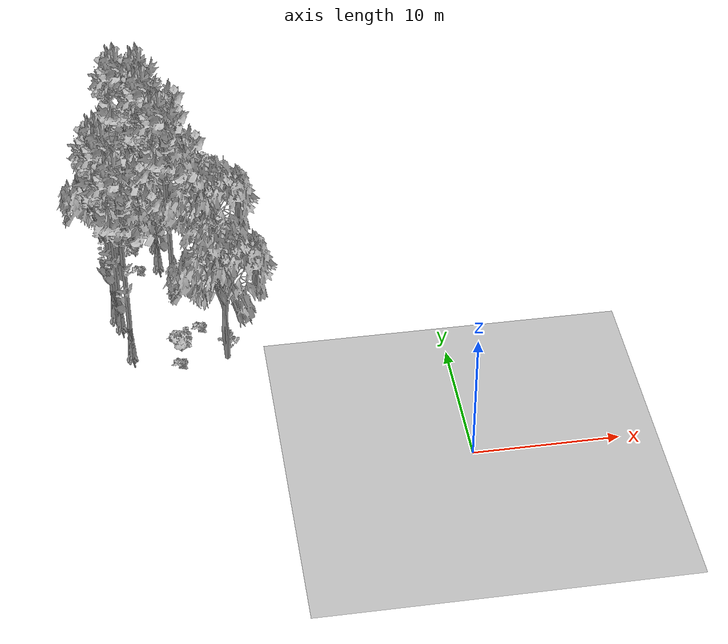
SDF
<sdf version="1.7">
 <world name="default">
  <model name="ground_plane">
   <static>1</static>
   <link name="link">
    <collision name="collision">
     <pose>-50 0 0 0 -0 0</pose>
     <geometry><plane><normal>0 0 1</normal><size>80 80</size></plane></geometry>
     <surface><contact><ode><min_depth>0.01</min_depth><max_vel>0</max_vel></ode></contact></surface>
    </collision>
    <visual name="grass">
     <cast_shadows>0</cast_shadows>
     <geometry>
      <mesh>
       <scale>0.46714285714285714 0.46714285714285714 0.1</scale>
       <uri>file://grass_plane/meshes/grass_plane.dae</uri>
      </mesh>
     </geometry>
    </visual>
   </link>
  </model>
  <model name="Tree 31">
   <static>1</static>
   <pose>-22.758737027457613 17.251786280701786 0 1.57079 -0 0</pose>
   <link name="link">
    <collision name="collision">
     <geometry><mesh><scale>3.5 5 3.5</scale><uri>model://tree_9/meshes/tree_9.obj</uri></mesh></geometry>
    </collision>
    <visual name="visual">
     <geometry><mesh><scale>3.5 5 3.5</scale><uri>model://tree_9/meshes/tree_9.obj</uri></mesh></geometry>
    </visual>
   </link>
  </model>
  <model name="Tree 125">
   <static>1</static>
   <pose>-19.71564428467924 25.69863543960244 0 1.57079 -0 0</pose>
   <link name="link">
    <collision name="collision">
     <geometry><mesh><scale>3.5 5 3.5</scale><uri>model://tree_2/meshes/tree_2.obj</uri></mesh></geometry>
    </collision>
    <visual name="visual">
     <geometry><mesh><scale>3.5 5 3.5</scale><uri>model://tree_2/meshes/tree_2.obj</uri></mesh></geometry>
    </visual>
   </link>
  </model>
  <model name="Tree 144">
   <static>1</static>
   <pose>-20.960469105989926 25.221714345924255 0 1.57079 -0 0</pose>
   <link name="link">
    <collision name="collision">
     <geometry><mesh><scale>3.5 5 3.5</scale><uri>model://tree_9/meshes/tree_9.obj</uri></mesh></geometry>
    </collision>
    <visual name="visual">
     <geometry><mesh><scale>3.5 5 3.5</scale><uri>model://tree_9/meshes/tree_9.obj</uri></mesh></geometry>
    </visual>
   </link>
  </model>
  <model name="Tree 248">
   <static>1</static>
   <pose>-15.319965873327412 11.839614374989779 0 1.57079 -0 0</pose>
   <link name="link">
    <collision name="collision">
     <geometry><mesh><scale>3.5 5 3.5</scale><uri>model://tree_2/meshes/tree_2.obj</uri></mesh></geometry>
    </collision>
    <visual name="visual">
     <geometry><mesh><scale>3.5 5 3.5</scale><uri>model://tree_2/meshes/tree_2.obj</uri></mesh></geometry>
    </visual>
   </link>
  </model>
  <model name="Tree 289">
   <static>1</static>
   <pose>-21.834169093438742 13.017754842265099 0 1.57079 -0 0</pose>
   <link name="link">
    <collision name="collision">
     <geometry><mesh><scale>3.5 5 3.5</scale><uri>model://tree_9/meshes/tree_9.obj</uri></mesh></geometry>
    </collision>
    <visual name="visual">
     <geometry><mesh><scale>3.5 5 3.5</scale><uri>model://tree_9/meshes/tree_9.obj</uri></mesh></geometry>
    </visual>
   </link>
  </model>
  <model name="Tree 298">
   <static>1</static>
   <pose>-18.3891540887306 19.37402861165519 0 1.57079 -0 0</pose>
   <link name="link">
    <collision name="collision">
     <geometry><mesh><scale>3.5 5 3.5</scale><uri>model://tree_9/meshes/tree_9.obj</uri></mesh></geometry>
    </collision>
    <visual name="visual">
     <geometry><mesh><scale>3.5 5 3.5</scale><uri>model://tree_9/meshes/tree_9.obj</uri></mesh></geometry>
    </visual>
   </link>
  </model>
  <model name="Tree 308">
   <static>1</static>
   <pose>-19.275306489439266 22.564905968408425 0 1.57079 -0 0</pose>
   <link name="link">
    <collision name="collision">
     <geometry><mesh><scale>3.5 5 3.5</scale><uri>model://tree_9/meshes/tree_9.obj</uri></mesh></geometry>
    </collision>
    <visual name="visual">
     <geometry><mesh><scale>3.5 5 3.5</scale><uri>model://tree_9/meshes/tree_9.obj</uri></mesh></geometry>
    </visual>
   </link>
  </model>
  <model name="Tree 370">
   <static>1</static>
   <pose>-22.08890374309328 21.395738509060052 0 1.57079 -0 0</pose>
   <link name="link">
    <collision name="collision">
     <geometry><mesh><scale>3.5 5 3.5</scale><uri>model://tree_2/meshes/tree_2.obj</uri></mesh></geometry>
    </collision>
    <visual name="visual">
     <geometry><mesh><scale>3.5 5 3.5</scale><uri>model://tree_2/meshes/tree_2.obj</uri></mesh></geometry>
    </visual>
   </link>
  </model>
  <model name="Tree 444">
   <static>1</static>
   <pose>-22.406247692614784 16.254492352325194 0 1.57079 -0 0</pose>
   <link name="link">
    <collision name="collision">
     <geometry><mesh><scale>3.5 5 3.5</scale><uri>model://tree_9/meshes/tree_9.obj</uri></mesh></geometry>
    </collision>
    <visual name="visual">
     <geometry><mesh><scale>3.5 5 3.5</scale><uri>model://tree_9/meshes/tree_9.obj</uri></mesh></geometry>
    </visual>
   </link>
  </model>
  <model name="Tree 480">
   <static>1</static>
   <pose>-15.69377773486416 19.28144192618275 0 1.57079 -0 0</pose>
   <link name="link">
    <collision name="collision">
     <geometry><mesh><scale>3.5 5 3.5</scale><uri>model://tree_2/meshes/tree_2.obj</uri></mesh></geometry>
    </collision>
    <visual name="visual">
     <geometry><mesh><scale>3.5 5 3.5</scale><uri>model://tree_2/meshes/tree_2.obj</uri></mesh></geometry>
    </visual>
   </link>
  </model>
  <model name="Tree 563">
   <static>1</static>
   <pose>-19.374439110559283 24.908467074214983 0 1.57079 -0 0</pose>
   <link name="link">
    <collision name="collision">
     <geometry><mesh><scale>3.5 5 3.5</scale><uri>model://tree_9/meshes/tree_9.obj</uri></mesh></geometry>
    </collision>
    <visual name="visual">
     <geometry><mesh><scale>3.5 5 3.5</scale><uri>model://tree_9/meshes/tree_9.obj</uri></mesh></geometry>
    </visual>
   </link>
  </model>
  <model name="Bush 134">
   <static>1</static>
   <pose>-21.070681879229095 24.57329539047599 0 1.57079 -0 0</pose>
   <link name="link">
    <collision name="collision">
     <geometry><mesh><scale>2 2 2</scale><uri>model://bush_2/meshes/bush_2.obj</uri></mesh></geometry>
     <surface><contact><collide_without_contact>false</collide_without_contact></contact></surface>
    </collision>
    <visual name="visual">
     <geometry><mesh><scale>2 2 2</scale><uri>model://bush_2/meshes/bush_2.obj</uri></mesh></geometry>
    </visual>
   </link>
  </model>
  <model name="Bush 181">
   <static>1</static>
   <pose>-18.31375439669639 19.244747070479455 0 1.57079 -0 0</pose>
   <link name="link">
    <collision name="collision">
     <geometry><mesh><scale>2 2 2</scale><uri>model://bush_2/meshes/bush_2.obj</uri></mesh></geometry>
     <surface><contact><collide_without_contact>false</collide_without_contact></contact></surface>
    </collision>
    <visual name="visual">
     <geometry><mesh><scale>2 2 2</scale><uri>model://bush_2/meshes/bush_2.obj</uri></mesh></geometry>
    </visual>
   </link>
  </model>
  <model name="Bush 203">
   <static>1</static>
   <pose>-20.752720984121144 22.056431453466388 0 1.57079 -0 0</pose>
   <link name="link">
    <collision name="collision">
     <geometry><mesh><scale>2 2 2</scale><uri>model://bush_2/meshes/bush_2.obj</uri></mesh></geometry>
     <surface><contact><collide_without_contact>false</collide_without_contact></contact></surface>
    </collision>
    <visual name="visual">
     <geometry><mesh><scale>2 2 2</scale><uri>model://bush_2/meshes/bush_2.obj</uri></mesh></geometry>
    </visual>
   </link>
  </model>
  <model name="Bush 274">
   <static>1</static>
   <pose>-22.806026824369823 24.119041188762026 0 1.57079 -0 0</pose>
   <link name="link">
    <collision name="collision">
     <geometry><mesh><scale>2 2 2</scale><uri>model://bush_4/meshes/bush_4.obj</uri></mesh></geometry>
     <surface><contact><collide_without_contact>false</collide_without_contact></contact></surface>
    </collision>
    <visual name="visual">
     <geometry><mesh><scale>2 2 2</scale><uri>model://bush_4/meshes/bush_4.obj</uri></mesh></geometry>
    </visual>
   </link>
  </model>
  <model name="Bush 285">
   <static>1</static>
   <pose>-21.841863543261788 23.618979318708462 0 1.57079 -0 0</pose>
   <link name="link">
    <collision name="collision">
     <geometry><mesh><scale>2 2 2</scale><uri>model://bush_1/meshes/bush_1.obj</uri></mesh></geometry>
     <surface><contact><collide_without_contact>false</collide_without_contact></contact></surface>
    </collision>
    <visual name="visual">
     <geometry><mesh><scale>2 2 2</scale><uri>model://bush_1/meshes/bush_1.obj</uri></mesh></geometry>
    </visual>
   </link>
  </model>
  <model name="Bush 298">
   <static>1</static>
   <pose>-17.607582314536753 19.578102605107894 0 1.57079 -0 0</pose>
   <link name="link">
    <collision name="collision">
     <geometry><mesh><scale>2 2 2</scale><uri>model://bush_2/meshes/bush_2.obj</uri></mesh></geometry>
     <surface><contact><collide_without_contact>false</collide_without_contact></contact></surface>
    </collision>
    <visual name="visual">
     <geometry><mesh><scale>2 2 2</scale><uri>model://bush_2/meshes/bush_2.obj</uri></mesh></geometry>
    </visual>
   </link>
  </model>
  <model name="Bush 313">
   <static>1</static>
   <pose>-16.897231768422923 15.187749225292144 0 1.57079 -0 0</pose>
   <link name="link">
    <collision name="collision">
     <geometry><mesh><scale>2 2 2</scale><uri>model://bush_2/meshes/bush_2.obj</uri></mesh></geometry>
     <surface><contact><collide_without_contact>false</collide_without_contact></contact></surface>
    </collision>
    <visual name="visual">
     <geometry><mesh><scale>2 2 2</scale><uri>model://bush_2/meshes/bush_2.obj</uri></mesh></geometry>
    </visual>
   </link>
  </model>
  <model name="Bush 352">
   <static>1</static>
   <pose>-18.55746534797758 11.574789692881978 0 1.57079 -0 0</pose>
   <link name="link">
    <collision name="collision">
     <geometry><mesh><scale>2 2 2</scale><uri>model://bush_2/meshes/bush_2.obj</uri></mesh></geometry>
     <surface><contact><collide_without_contact>false</collide_without_contact></contact></surface>
    </collision>
    <visual name="visual">
     <geometry><mesh><scale>2 2 2</scale><uri>model://bush_2/meshes/bush_2.obj</uri></mesh></geometry>
    </visual>
   </link>
  </model>
  <model name="Bush 394">
   <static>1</static>
   <pose>-18.36451263289968 12.945753093368339 0 1.57079 -0 0</pose>
   <link name="link">
    <collision name="collision">
     <geometry><mesh><scale>2 2 2</scale><uri>model://bush_1/meshes/bush_1.obj</uri></mesh></geometry>
     <surface><contact><collide_without_contact>false</collide_without_contact></contact></surface>
    </collision>
    <visual name="visual">
     <geometry><mesh><scale>2 2 2</scale><uri>model://bush_1/meshes/bush_1.obj</uri></mesh></geometry>
    </visual>
   </link>
  </model>
  <model name="Bush 469">
   <static>1</static>
   <pose>-14.84942125208374 19.391333777926512 0 1.57079 -0 0</pose>
   <link name="link">
    <collision name="collision">
     <geometry><mesh><scale>2 2 2</scale><uri>model://bush_5/meshes/bush_5.obj</uri></mesh></geometry>
     <surface><contact><collide_without_contact>false</collide_without_contact></contact></surface>
    </collision>
    <visual name="visual">
     <geometry><mesh><scale>2 2 2</scale><uri>model://bush_5/meshes/bush_5.obj</uri></mesh></geometry>
    </visual>
   </link>
  </model>
  <model name="Bush 606">
   <static>1</static>
   <pose>-15.028695821276305 12.821092609175949 0 1.57079 -0 0</pose>
   <link name="link">
    <collision name="collision">
     <geometry><mesh><scale>2 2 2</scale><uri>model://bush_4/meshes/bush_4.obj</uri></mesh></geometry>
     <surface><contact><collide_without_contact>false</collide_without_contact></contact></surface>
    </collision>
    <visual name="visual">
     <geometry><mesh><scale>2 2 2</scale><uri>model://bush_4/meshes/bush_4.obj</uri></mesh></geometry>
    </visual>
   </link>
  </model>
 </world>
</sdf>
